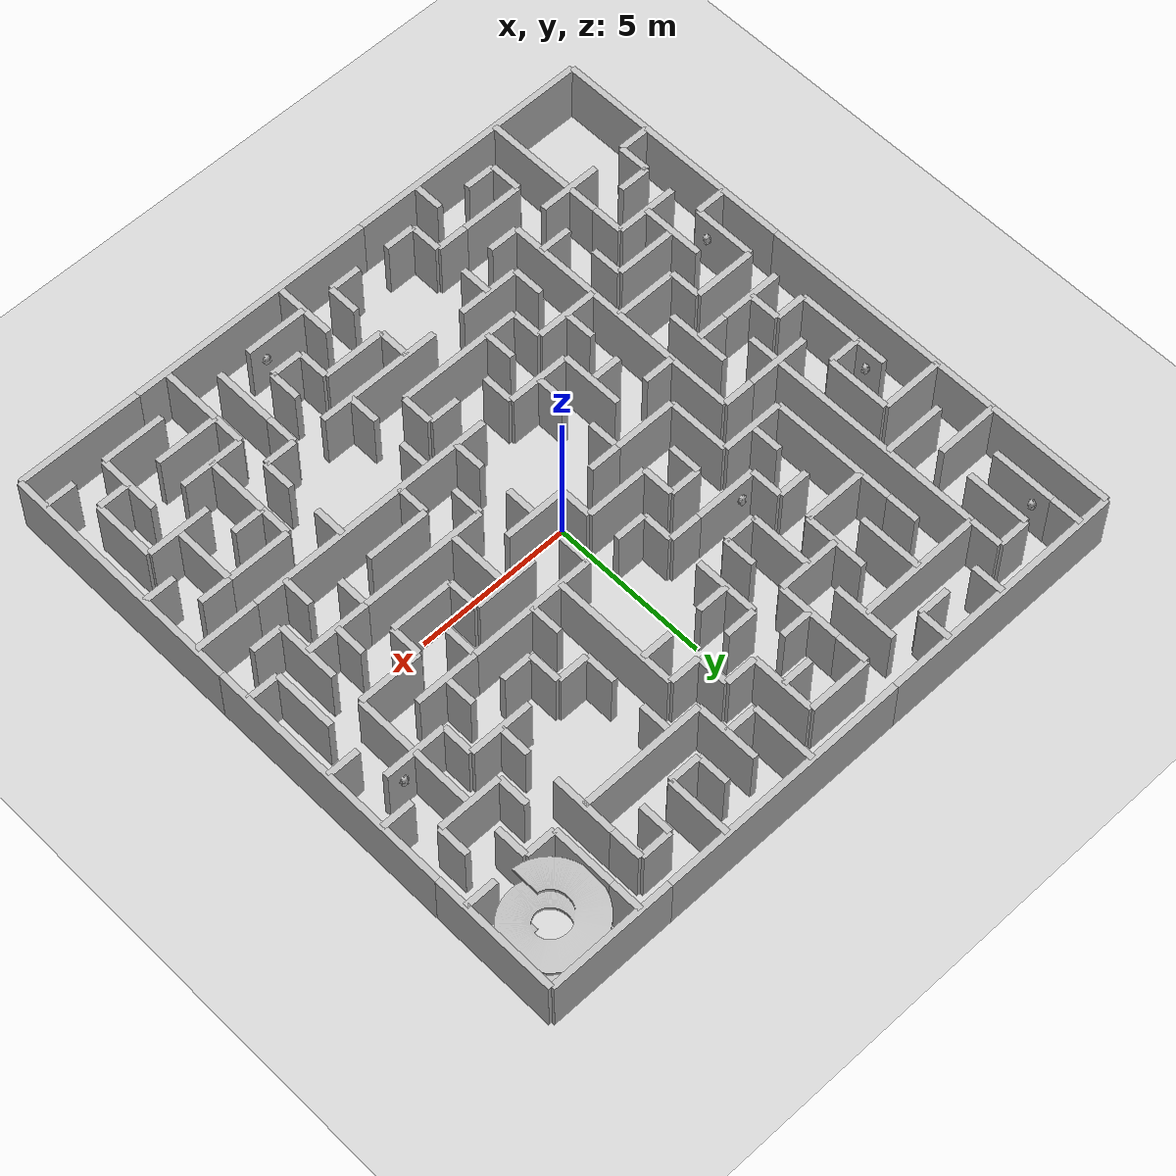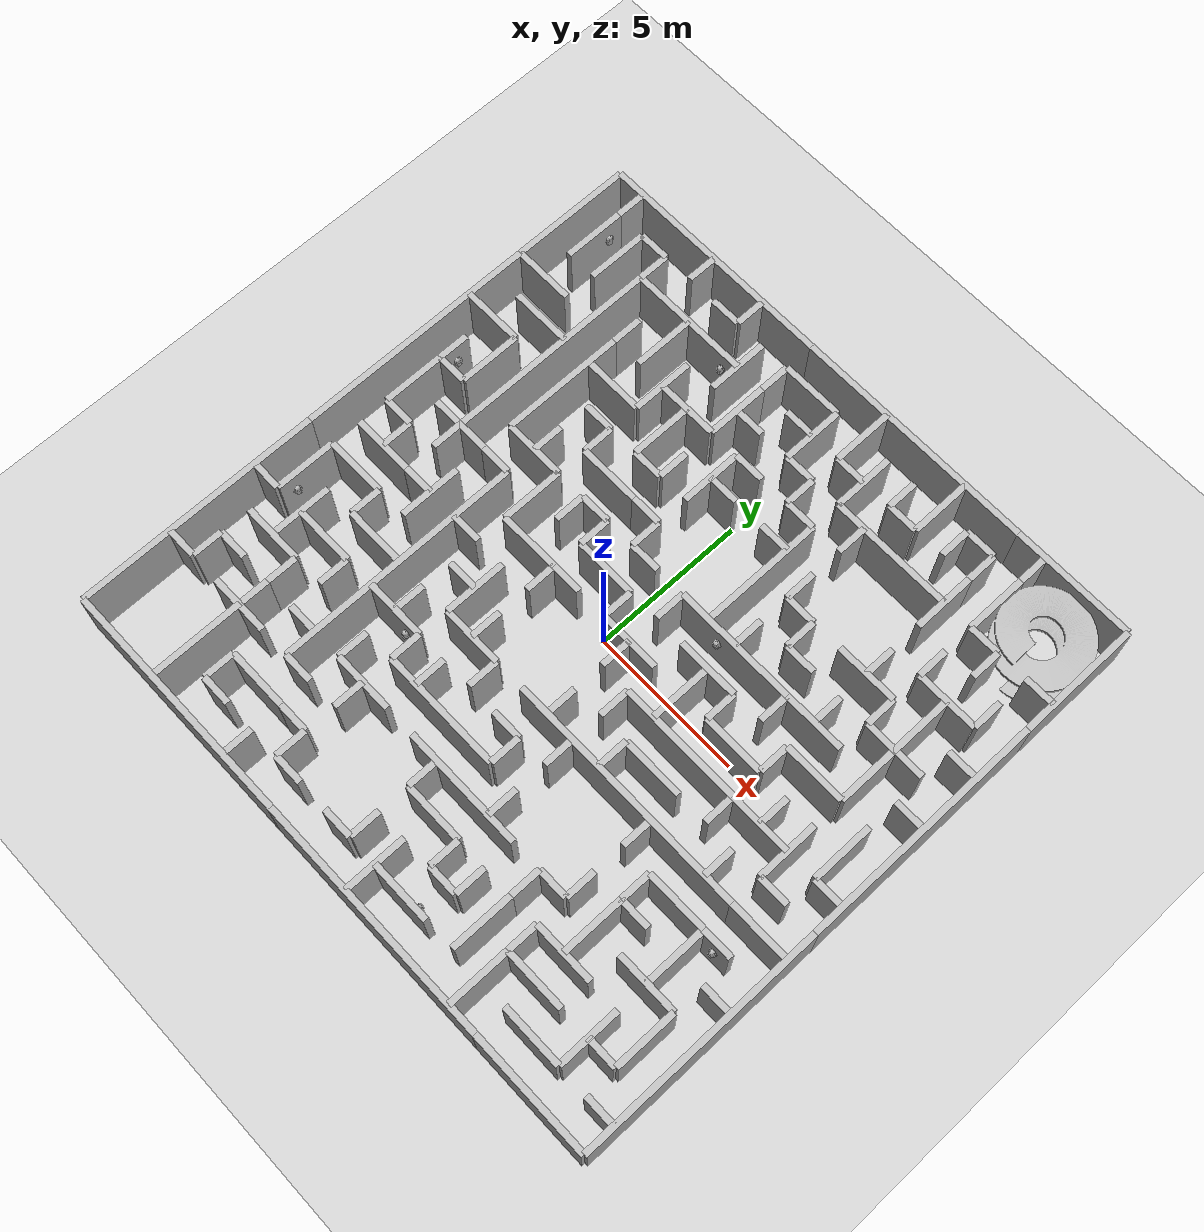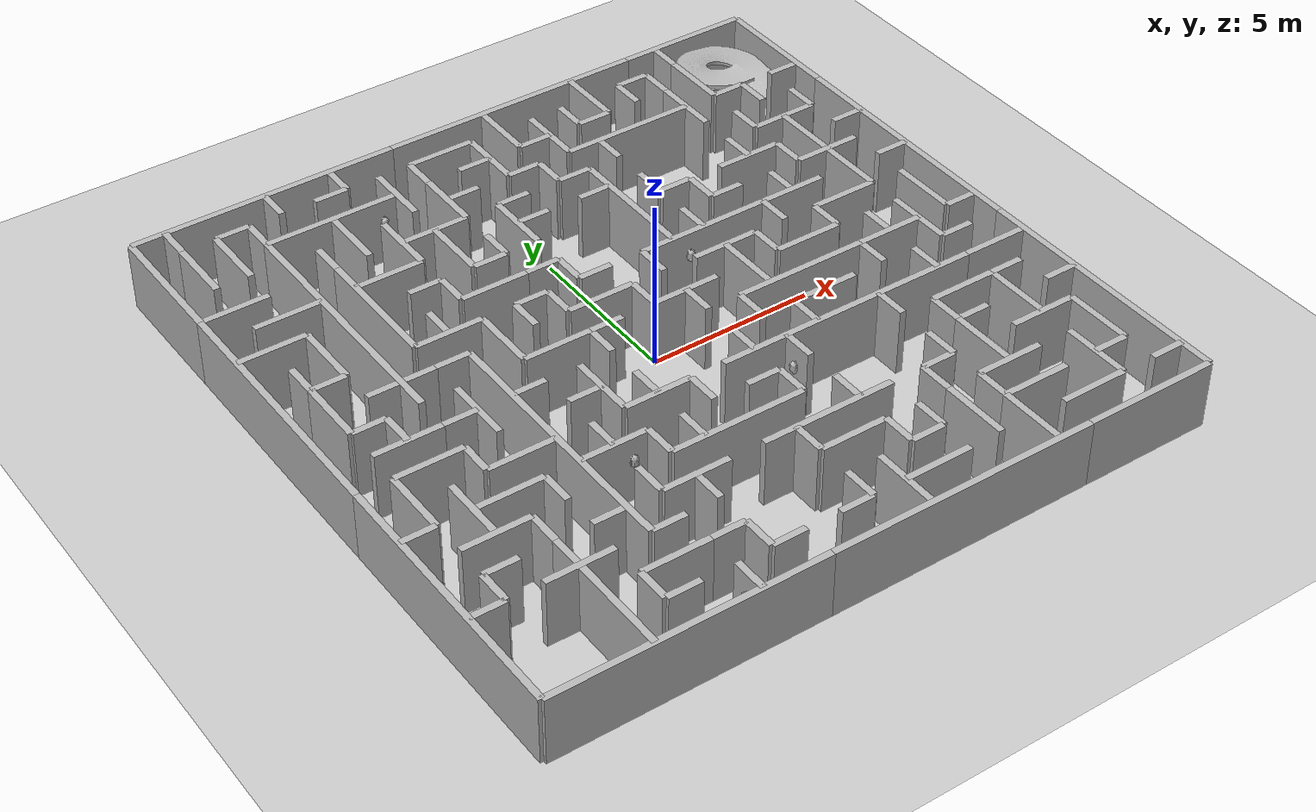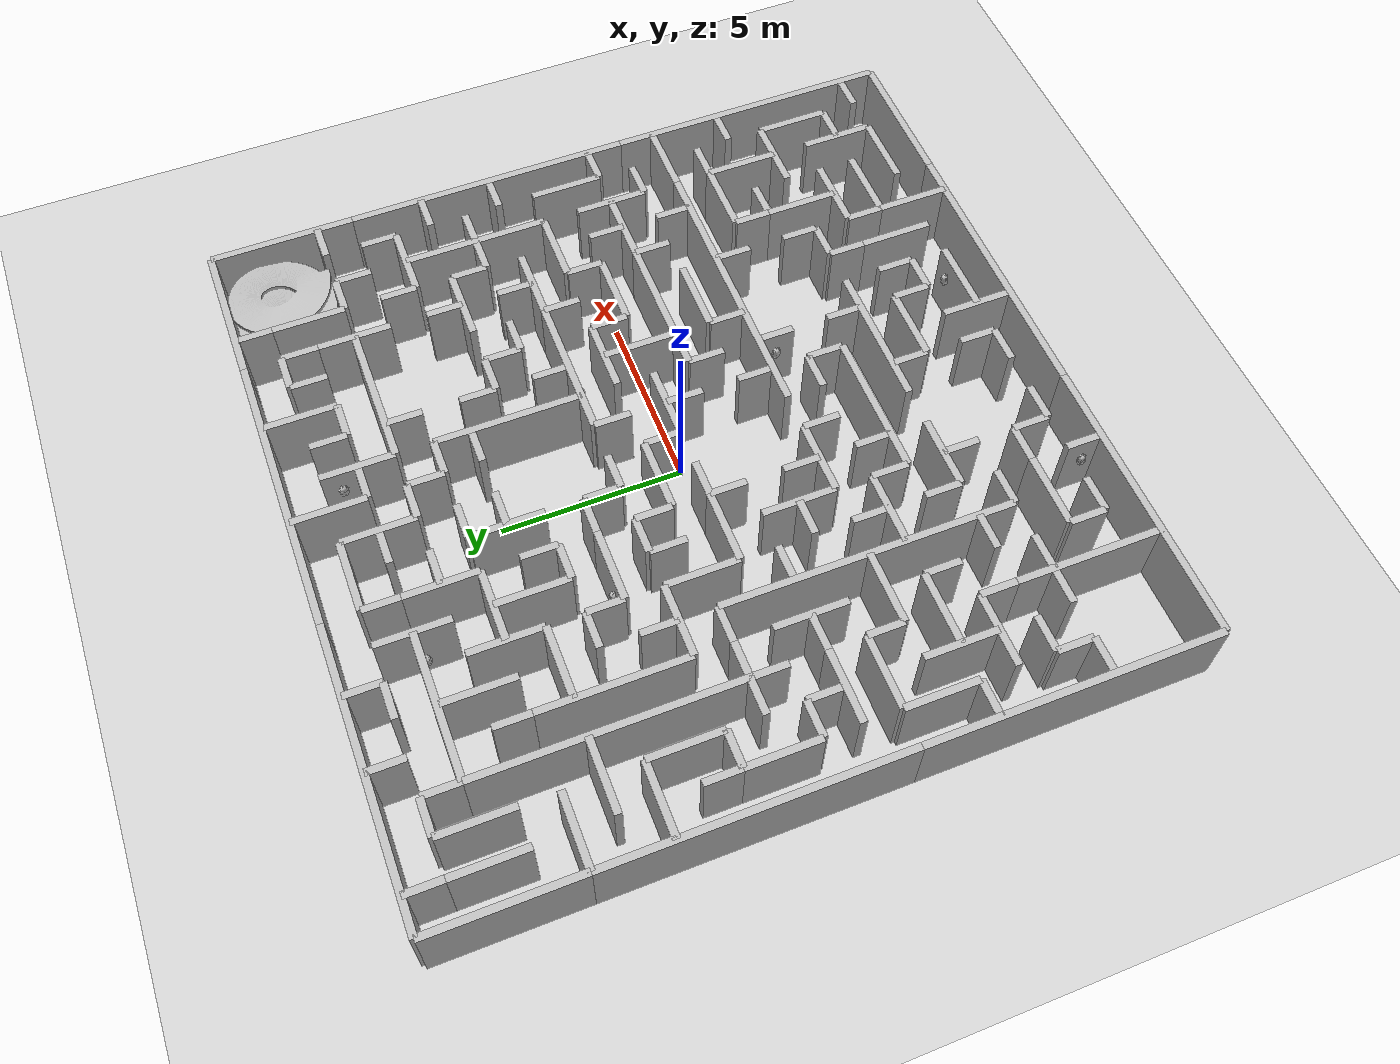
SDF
<sdf version="1.10">
 <world name="maze_world">
  <include><uri>model://ground</uri></include>
  <light type="directional" name="sun">
   <visualize>false</visualize>
   <pose>0 0 10 0 0 0</pose>
   <diffuse>0.8 0.8 0.8 1</diffuse>
   <specular>0.2 0.2 0.2 1</specular>
   <attenuation>
    <range>1000</range>
    <constant>0.9</constant>
    <linear>0.01</linear>
    <quadratic>0.001</quadratic>
   </attenuation>
   <direction>-0.5 0.5 -1</direction>
  </light>
  <include><name>ramp_0</name><uri>model://ramp</uri><pose>8.50 8.50 0.00 0 0 0</pose></include>
  <include><name>wall_8m_0_0</name><uri>model://wall_8m</uri><pose>-6.00 -10.00 0.0 0 0 0.0000</pose></include>
  <include><name>wall_8m_0_1</name><uri>model://wall_8m</uri><pose>2.00 -10.00 0.0 0 0 0.0000</pose></include>
  <include><name>wall_4m_0_2</name><uri>model://wall_4m</uri><pose>8.00 -10.00 0.0 0 0 0.0000</pose></include>
  <include><name>wall_1m_0_3</name><uri>model://wall_1m</uri><pose>-5.50 -9.00 0.0 0 0 0.0000</pose></include>
  <include><name>wall_1m_0_4</name><uri>model://wall_1m</uri><pose>-2.50 -9.00 0.0 0 0 0.0000</pose></include>
  <include><name>wall_1m_0_5</name><uri>model://wall_1m</uri><pose>-0.50 -9.00 0.0 0 0 0.0000</pose></include>
  <include><name>wall_2m_0_6</name><uri>model://wall_2m</uri><pose>2.00 -9.00 0.0 0 0 0.0000</pose></include>
  <include><name>wall_2m_0_7</name><uri>model://wall_2m</uri><pose>7.00 -9.00 0.0 0 0 0.0000</pose></include>
  <include><name>wall_1m_0_8</name><uri>model://wall_1m</uri><pose>9.50 -9.00 0.0 0 0 0.0000</pose></include>
  <include><name>wall_2m_0_9</name><uri>model://wall_2m</uri><pose>-5.00 -8.00 0.0 0 0 0.0000</pose></include>
  <include><name>wall_1m_0_10</name><uri>model://wall_1m</uri><pose>-3.50 -8.00 0.0 0 0 0.0000</pose></include>
  <include><name>wall_1m_0_11</name><uri>model://wall_1m</uri><pose>2.50 -8.00 0.0 0 0 0.0000</pose></include>
  <include><name>wall_2m_0_12</name><uri>model://wall_2m</uri><pose>6.00 -8.00 0.0 0 0 0.0000</pose></include>
  <include><name>wall_1m_0_13</name><uri>model://wall_1m</uri><pose>8.50 -8.00 0.0 0 0 0.0000</pose></include>
  <include><name>wall_1m_0_14</name><uri>model://wall_1m</uri><pose>-9.50 -7.00 0.0 0 0 0.0000</pose></include>
  <include><name>wall_2m_0_15</name><uri>model://wall_2m</uri><pose>-7.00 -7.00 0.0 0 0 0.0000</pose></include>
  <include><name>wall_1m_0_16</name><uri>model://wall_1m</uri><pose>-4.50 -7.00 0.0 0 0 0.0000</pose></include>
  <include><name>wall_2m_0_17</name><uri>model://wall_2m</uri><pose>1.00 -7.00 0.0 0 0 0.0000</pose></include>
  <include><name>wall_2m_0_18</name><uri>model://wall_2m</uri><pose>6.00 -7.00 0.0 0 0 0.0000</pose></include>
  <include><name>wall_1m_0_19</name><uri>model://wall_1m</uri><pose>-8.50 -6.00 0.0 0 0 0.0000</pose></include>
  <include><name>wall_1m_0_20</name><uri>model://wall_1m</uri><pose>-5.50 -6.00 0.0 0 0 0.0000</pose></include>
  <include><name>wall_2m_0_21</name><uri>model://wall_2m</uri><pose>-3.00 -6.00 0.0 0 0 0.0000</pose></include>
  <include><name>wall_4m_0_22</name><uri>model://wall_4m</uri><pose>1.00 -6.00 0.0 0 0 0.0000</pose></include>
  <include><name>wall_1m_0_23</name><uri>model://wall_1m</uri><pose>4.50 -6.00 0.0 0 0 0.0000</pose></include>
  <include><name>wall_2m_0_24</name><uri>model://wall_2m</uri><pose>8.00 -6.00 0.0 0 0 0.0000</pose></include>
  <include><name>wall_2m_0_25</name><uri>model://wall_2m</uri><pose>-8.00 -5.00 0.0 0 0 0.0000</pose></include>
  <include><name>wall_4m_0_26</name><uri>model://wall_4m</uri><pose>-1.00 -5.00 0.0 0 0 0.0000</pose></include>
  <include><name>wall_1m_0_27</name><uri>model://wall_1m</uri><pose>6.50 -5.00 0.0 0 0 0.0000</pose></include>
  <include><name>wall_1m_0_28</name><uri>model://wall_1m</uri><pose>9.50 -5.00 0.0 0 0 0.0000</pose></include>
  <include><name>wall_1m_0_29</name><uri>model://wall_1m</uri><pose>-9.50 -4.00 0.0 0 0 0.0000</pose></include>
  <include><name>wall_2m_0_30</name><uri>model://wall_2m</uri><pose>-7.00 -4.00 0.0 0 0 0.0000</pose></include>
  <include><name>wall_2m_0_31</name><uri>model://wall_2m</uri><pose>-4.00 -4.00 0.0 0 0 0.0000</pose></include>
  <include><name>wall_1m_0_32</name><uri>model://wall_1m</uri><pose>0.50 -4.00 0.0 0 0 0.0000</pose></include>
  <include><name>wall_2m_0_33</name><uri>model://wall_2m</uri><pose>7.00 -4.00 0.0 0 0 0.0000</pose></include>
  <include><name>wall_1m_0_34</name><uri>model://wall_1m</uri><pose>8.50 -4.00 0.0 0 0 0.0000</pose></include>
  <include><name>wall_2m_0_35</name><uri>model://wall_2m</uri><pose>-6.00 -3.00 0.0 0 0 0.0000</pose></include>
  <include><name>wall_2m_0_36</name><uri>model://wall_2m</uri><pose>-2.00 -3.00 0.0 0 0 0.0000</pose></include>
  <include><name>wall_8m_0_37</name><uri>model://wall_8m</uri><pose>4.00 -3.00 0.0 0 0 0.0000</pose></include>
  <include><name>wall_2m_0_38</name><uri>model://wall_2m</uri><pose>9.00 -3.00 0.0 0 0 0.0000</pose></include>
  <include><name>wall_2m_0_39</name><uri>model://wall_2m</uri><pose>-8.00 -2.00 0.0 0 0 0.0000</pose></include>
  <include><name>wall_1m_0_40</name><uri>model://wall_1m</uri><pose>-3.50 -2.00 0.0 0 0 0.0000</pose></include>
  <include><name>wall_2m_0_41</name><uri>model://wall_2m</uri><pose>4.00 -2.00 0.0 0 0 0.0000</pose></include>
  <include><name>wall_1m_0_42</name><uri>model://wall_1m</uri><pose>8.50 -2.00 0.0 0 0 0.0000</pose></include>
  <include><name>wall_2m_0_43</name><uri>model://wall_2m</uri><pose>-8.00 -1.00 0.0 0 0 0.0000</pose></include>
  <include><name>wall_1m_0_44</name><uri>model://wall_1m</uri><pose>-6.50 -1.00 0.0 0 0 0.0000</pose></include>
  <include><name>wall_1m_0_45</name><uri>model://wall_1m</uri><pose>-4.50 -1.00 0.0 0 0 0.0000</pose></include>
  <include><name>wall_4m_0_46</name><uri>model://wall_4m</uri><pose>4.00 -1.00 0.0 0 0 0.0000</pose></include>
  <include><name>wall_2m_0_47</name><uri>model://wall_2m</uri><pose>7.00 -1.00 0.0 0 0 0.0000</pose></include>
  <include><name>wall_1m_0_48</name><uri>model://wall_1m</uri><pose>9.50 -1.00 0.0 0 0 0.0000</pose></include>
  <include><name>wall_1m_0_49</name><uri>model://wall_1m</uri><pose>-8.50 0.00 0.0 0 0 0.0000</pose></include>
  <include><name>wall_2m_0_50</name><uri>model://wall_2m</uri><pose>-3.00 0.00 0.0 0 0 0.0000</pose></include>
  <include><name>wall_1m_0_51</name><uri>model://wall_1m</uri><pose>-1.50 0.00 0.0 0 0 0.0000</pose></include>
  <include><name>wall_2m_0_52</name><uri>model://wall_2m</uri><pose>1.00 0.00 0.0 0 0 0.0000</pose></include>
  <include><name>wall_2m_0_53</name><uri>model://wall_2m</uri><pose>5.00 0.00 0.0 0 0 0.0000</pose></include>
  <include><name>wall_2m_0_54</name><uri>model://wall_2m</uri><pose>-7.00 1.00 0.0 0 0 0.0000</pose></include>
  <include><name>wall_1m_0_55</name><uri>model://wall_1m</uri><pose>-5.50 1.00 0.0 0 0 0.0000</pose></include>
  <include><name>wall_2m_0_56</name><uri>model://wall_2m</uri><pose>-1.00 1.00 0.0 0 0 0.0000</pose></include>
  <include><name>wall_2m_0_57</name><uri>model://wall_2m</uri><pose>3.00 1.00 0.0 0 0 0.0000</pose></include>
  <include><name>wall_2m_0_58</name><uri>model://wall_2m</uri><pose>7.00 1.00 0.0 0 0 0.0000</pose></include>
  <include><name>wall_1m_0_59</name><uri>model://wall_1m</uri><pose>-8.50 2.00 0.0 0 0 0.0000</pose></include>
  <include><name>wall_2m_0_60</name><uri>model://wall_2m</uri><pose>-5.00 2.00 0.0 0 0 0.0000</pose></include>
  <include><name>wall_1m_0_61</name><uri>model://wall_1m</uri><pose>-2.50 2.00 0.0 0 0 0.0000</pose></include>
  <include><name>wall_1m_0_62</name><uri>model://wall_1m</uri><pose>-0.50 2.00 0.0 0 0 0.0000</pose></include>
  <include><name>wall_4m_0_63</name><uri>model://wall_4m</uri><pose>3.00 2.00 0.0 0 0 0.0000</pose></include>
  <include><name>wall_2m_0_64</name><uri>model://wall_2m</uri><pose>6.00 2.00 0.0 0 0 0.0000</pose></include>
  <include><name>wall_1m_0_65</name><uri>model://wall_1m</uri><pose>9.50 2.00 0.0 0 0 0.0000</pose></include>
  <include><name>wall_2m_0_66</name><uri>model://wall_2m</uri><pose>-3.00 3.00 0.0 0 0 0.0000</pose></include>
  <include><name>wall_1m_0_67</name><uri>model://wall_1m</uri><pose>-1.50 3.00 0.0 0 0 0.0000</pose></include>
  <include><name>wall_1m_0_68</name><uri>model://wall_1m</uri><pose>4.50 3.00 0.0 0 0 0.0000</pose></include>
  <include><name>wall_2m_0_69</name><uri>model://wall_2m</uri><pose>8.00 3.00 0.0 0 0 0.0000</pose></include>
  <include><name>wall_2m_0_70</name><uri>model://wall_2m</uri><pose>-9.00 4.00 0.0 0 0 0.0000</pose></include>
  <include><name>wall_1m_0_71</name><uri>model://wall_1m</uri><pose>-4.50 4.00 0.0 0 0 0.0000</pose></include>
  <include><name>wall_1m_0_72</name><uri>model://wall_1m</uri><pose>-2.50 4.00 0.0 0 0 0.0000</pose></include>
  <include><name>wall_1m_0_73</name><uri>model://wall_1m</uri><pose>3.50 4.00 0.0 0 0 0.0000</pose></include>
  <include><name>wall_2m_0_74</name><uri>model://wall_2m</uri><pose>6.00 4.00 0.0 0 0 0.0000</pose></include>
  <include><name>wall_1m_0_75</name><uri>model://wall_1m</uri><pose>9.50 4.00 0.0 0 0 0.0000</pose></include>
  <include><name>wall_2m_0_76</name><uri>model://wall_2m</uri><pose>-8.00 5.00 0.0 0 0 0.0000</pose></include>
  <include><name>wall_2m_0_77</name><uri>model://wall_2m</uri><pose>-5.00 5.00 0.0 0 0 0.0000</pose></include>
  <include><name>wall_1m_0_78</name><uri>model://wall_1m</uri><pose>-0.50 5.00 0.0 0 0 0.0000</pose></include>
  <include><name>wall_1m_0_79</name><uri>model://wall_1m</uri><pose>1.50 5.00 0.0 0 0 0.0000</pose></include>
  <include><name>wall_2m_0_80</name><uri>model://wall_2m</uri><pose>8.00 5.00 0.0 0 0 0.0000</pose></include>
  <include><name>wall_2m_0_81</name><uri>model://wall_2m</uri><pose>-9.00 6.00 0.0 0 0 0.0000</pose></include>
  <include><name>wall_2m_0_82</name><uri>model://wall_2m</uri><pose>-3.00 6.00 0.0 0 0 0.0000</pose></include>
  <include><name>wall_1m_0_83</name><uri>model://wall_1m</uri><pose>-0.50 6.00 0.0 0 0 0.0000</pose></include>
  <include><name>wall_1m_0_84</name><uri>model://wall_1m</uri><pose>1.50 6.00 0.0 0 0 0.0000</pose></include>
  <include><name>wall_1m_0_85</name><uri>model://wall_1m</uri><pose>-1.50 7.00 0.0 0 0 0.0000</pose></include>
  <include><name>wall_1m_0_86</name><uri>model://wall_1m</uri><pose>0.50 7.00 0.0 0 0 0.0000</pose></include>
  <include><name>wall_4m_0_87</name><uri>model://wall_4m</uri><pose>4.00 7.00 0.0 0 0 0.0000</pose></include>
  <include><name>wall_1m_0_88</name><uri>model://wall_1m</uri><pose>7.50 7.00 0.0 0 0 0.0000</pose></include>
  <include><name>wall_1m_0_89</name><uri>model://wall_1m</uri><pose>9.50 7.00 0.0 0 0 0.0000</pose></include>
  <include><name>wall_4m_0_90</name><uri>model://wall_4m</uri><pose>-5.00 8.00 0.0 0 0 0.0000</pose></include>
  <include><name>wall_1m_0_91</name><uri>model://wall_1m</uri><pose>-0.50 8.00 0.0 0 0 0.0000</pose></include>
  <include><name>wall_1m_0_92</name><uri>model://wall_1m</uri><pose>1.50 8.00 0.0 0 0 0.0000</pose></include>
  <include><name>wall_1m_0_93</name><uri>model://wall_1m</uri><pose>3.50 8.00 0.0 0 0 0.0000</pose></include>
  <include><name>wall_1m_0_94</name><uri>model://wall_1m</uri><pose>-7.50 9.00 0.0 0 0 0.0000</pose></include>
  <include><name>wall_1m_0_95</name><uri>model://wall_1m</uri><pose>-4.50 9.00 0.0 0 0 0.0000</pose></include>
  <include><name>wall_2m_0_96</name><uri>model://wall_2m</uri><pose>-1.00 9.00 0.0 0 0 0.0000</pose></include>
  <include><name>wall_1m_0_97</name><uri>model://wall_1m</uri><pose>5.50 9.00 0.0 0 0 0.0000</pose></include>
  <include><name>wall_8m_0_98</name><uri>model://wall_8m</uri><pose>-10.00 -6.00 0.0 0 0 1.5708</pose></include>
  <include><name>wall_8m_0_99</name><uri>model://wall_8m</uri><pose>-10.00 2.00 0.0 0 0 1.5708</pose></include>
  <include><name>wall_4m_0_100</name><uri>model://wall_4m</uri><pose>-10.00 8.00 0.0 0 0 1.5708</pose></include>
  <include><name>wall_1m_0_101</name><uri>model://wall_1m</uri><pose>-9.00 -6.50 0.0 0 0 1.5708</pose></include>
  <include><name>wall_2m_0_102</name><uri>model://wall_2m</uri><pose>-9.00 -3.00 0.0 0 0 1.5708</pose></include>
  <include><name>wall_2m_0_103</name><uri>model://wall_2m</uri><pose>-9.00 1.00 0.0 0 0 1.5708</pose></include>
  <include><name>wall_1m_0_104</name><uri>model://wall_1m</uri><pose>-9.00 2.50 0.0 0 0 1.5708</pose></include>
  <include><name>wall_2m_0_105</name><uri>model://wall_2m</uri><pose>-9.00 8.00 0.0 0 0 1.5708</pose></include>
  <include><name>wall_1m_0_106</name><uri>model://wall_1m</uri><pose>-9.00 9.50 0.0 0 0 1.5708</pose></include>
  <include><name>wall_2m_0_107</name><uri>model://wall_2m</uri><pose>-8.00 -4.00 0.0 0 0 1.5708</pose></include>
  <include><name>wall_1m_0_108</name><uri>model://wall_1m</uri><pose>-8.00 -0.50 0.0 0 0 1.5708</pose></include>
  <include><name>wall_2m_0_109</name><uri>model://wall_2m</uri><pose>-8.00 3.00 0.0 0 0 1.5708</pose></include>
  <include><name>wall_2m_0_110</name><uri>model://wall_2m</uri><pose>-8.00 8.00 0.0 0 0 1.5708</pose></include>
  <include><name>wall_4m_0_111</name><uri>model://wall_4m</uri><pose>-7.00 -8.00 0.0 0 0 1.5708</pose></include>
  <include><name>wall_1m_0_112</name><uri>model://wall_1m</uri><pose>-7.00 -5.50 0.0 0 0 1.5708</pose></include>
  <include><name>wall_1m_0_113</name><uri>model://wall_1m</uri><pose>-7.00 -2.50 0.0 0 0 1.5708</pose></include>
  <include><name>wall_8m_0_114</name><uri>model://wall_8m</uri><pose>-7.00 4.00 0.0 0 0 1.5708</pose></include>
  <include><name>wall_1m_0_115</name><uri>model://wall_1m</uri><pose>-7.00 8.50 0.0 0 0 1.5708</pose></include>
  <include><name>wall_1m_0_116</name><uri>model://wall_1m</uri><pose>-6.00 -8.50 0.0 0 0 1.5708</pose></include>
  <include><name>wall_1m_0_117</name><uri>model://wall_1m</uri><pose>-6.00 -4.50 0.0 0 0 1.5708</pose></include>
  <include><name>wall_2m_0_118</name><uri>model://wall_2m</uri><pose>-6.00 -1.00 0.0 0 0 1.5708</pose></include>
  <include><name>wall_4m_0_119</name><uri>model://wall_4m</uri><pose>-6.00 4.00 0.0 0 0 1.5708</pose></include>
  <include><name>wall_1m_0_120</name><uri>model://wall_1m</uri><pose>-6.00 6.50 0.0 0 0 1.5708</pose></include>
  <include><name>wall_1m_0_121</name><uri>model://wall_1m</uri><pose>-6.00 9.50 0.0 0 0 1.5708</pose></include>
  <include><name>wall_8m_0_122</name><uri>model://wall_8m</uri><pose>-5.00 -3.00 0.0 0 0 1.5708</pose></include>
  <include><name>wall_1m_0_123</name><uri>model://wall_1m</uri><pose>-5.00 2.50 0.0 0 0 1.5708</pose></include>
  <include><name>wall_2m_0_124</name><uri>model://wall_2m</uri><pose>-5.00 7.00 0.0 0 0 1.5708</pose></include>
  <include><name>wall_1m_0_125</name><uri>model://wall_1m</uri><pose>-4.00 -9.50 0.0 0 0 1.5708</pose></include>
  <include><name>wall_1m_0_126</name><uri>model://wall_1m</uri><pose>-4.00 -5.50 0.0 0 0 1.5708</pose></include>
  <include><name>wall_1m_0_127</name><uri>model://wall_1m</uri><pose>-4.00 -3.50 0.0 0 0 1.5708</pose></include>
  <include><name>wall_2m_0_128</name><uri>model://wall_2m</uri><pose>-4.00 1.00 0.0 0 0 1.5708</pose></include>
  <include><name>wall_1m_0_129</name><uri>model://wall_1m</uri><pose>-4.00 3.50 0.0 0 0 1.5708</pose></include>
  <include><name>wall_2m_0_130</name><uri>model://wall_2m</uri><pose>-4.00 6.00 0.0 0 0 1.5708</pose></include>
  <include><name>wall_1m_0_131</name><uri>model://wall_1m</uri><pose>-4.00 9.50 0.0 0 0 1.5708</pose></include>
  <include><name>wall_1m_0_132</name><uri>model://wall_1m</uri><pose>-3.00 -8.50 0.0 0 0 1.5708</pose></include>
  <include><name>wall_1m_0_133</name><uri>model://wall_1m</uri><pose>-3.00 -6.50 0.0 0 0 1.5708</pose></include>
  <include><name>wall_1m_0_134</name><uri>model://wall_1m</uri><pose>-3.00 -4.50 0.0 0 0 1.5708</pose></include>
  <include><name>wall_2m_0_135</name><uri>model://wall_2m</uri><pose>-3.00 -2.00 0.0 0 0 1.5708</pose></include>
  <include><name>wall_1m_0_136</name><uri>model://wall_1m</uri><pose>-3.00 1.50 0.0 0 0 1.5708</pose></include>
  <include><name>wall_2m_0_137</name><uri>model://wall_2m</uri><pose>-3.00 5.00 0.0 0 0 1.5708</pose></include>
  <include><name>wall_2m_0_138</name><uri>model://wall_2m</uri><pose>-3.00 8.00 0.0 0 0 1.5708</pose></include>
  <include><name>wall_1m_0_139</name><uri>model://wall_1m</uri><pose>-2.00 -4.50 0.0 0 0 1.5708</pose></include>
  <include><name>wall_1m_0_140</name><uri>model://wall_1m</uri><pose>-2.00 -2.50 0.0 0 0 1.5708</pose></include>
  <include><name>wall_1m_0_141</name><uri>model://wall_1m</uri><pose>-2.00 -0.50 0.0 0 0 1.5708</pose></include>
  <include><name>wall_1m_0_142</name><uri>model://wall_1m</uri><pose>-2.00 1.50 0.0 0 0 1.5708</pose></include>
  <include><name>wall_1m_0_143</name><uri>model://wall_1m</uri><pose>-2.00 4.50 0.0 0 0 1.5708</pose></include>
  <include><name>wall_2m_0_144</name><uri>model://wall_2m</uri><pose>-2.00 7.00 0.0 0 0 1.5708</pose></include>
  <include><name>wall_1m_0_145</name><uri>model://wall_1m</uri><pose>-2.00 8.50 0.0 0 0 1.5708</pose></include>
  <include><name>wall_1m_0_146</name><uri>model://wall_1m</uri><pose>-1.00 -3.50 0.0 0 0 1.5708</pose></include>
  <include><name>wall_1m_0_147</name><uri>model://wall_1m</uri><pose>-1.00 2.50 0.0 0 0 1.5708</pose></include>
  <include><name>wall_2m_0_148</name><uri>model://wall_2m</uri><pose>-1.00 5.00 0.0 0 0 1.5708</pose></include>
  <include><name>wall_1m_0_149</name><uri>model://wall_1m</uri><pose>0.00 -8.50 0.0 0 0 1.5708</pose></include>
  <include><name>wall_1m_0_150</name><uri>model://wall_1m</uri><pose>0.00 -6.50 0.0 0 0 1.5708</pose></include>
  <include><name>wall_1m_0_151</name><uri>model://wall_1m</uri><pose>0.00 0.50 0.0 0 0 1.5708</pose></include>
  <include><name>wall_2m_0_152</name><uri>model://wall_2m</uri><pose>0.00 8.00 0.0 0 0 1.5708</pose></include>
  <include><name>wall_2m_0_153</name><uri>model://wall_2m</uri><pose>1.00 -9.00 0.0 0 0 1.5708</pose></include>
  <include><name>wall_1m_0_154</name><uri>model://wall_1m</uri><pose>1.00 -4.50 0.0 0 0 1.5708</pose></include>
  <include><name>wall_1m_0_155</name><uri>model://wall_1m</uri><pose>1.00 -2.50 0.0 0 0 1.5708</pose></include>
  <include><name>wall_1m_0_156</name><uri>model://wall_1m</uri><pose>1.00 -0.50 0.0 0 0 1.5708</pose></include>
  <include><name>wall_1m_0_157</name><uri>model://wall_1m</uri><pose>1.00 1.50 0.0 0 0 1.5708</pose></include>
  <include><name>wall_1m_0_158</name><uri>model://wall_1m</uri><pose>1.00 6.50 0.0 0 0 1.5708</pose></include>
  <include><name>wall_2m_0_159</name><uri>model://wall_2m</uri><pose>1.00 9.00 0.0 0 0 1.5708</pose></include>
  <include><name>wall_1m_0_160</name><uri>model://wall_1m</uri><pose>2.00 -7.50 0.0 0 0 1.5708</pose></include>
  <include><name>wall_1m_0_161</name><uri>model://wall_1m</uri><pose>2.00 -5.50 0.0 0 0 1.5708</pose></include>
  <include><name>wall_1m_0_162</name><uri>model://wall_1m</uri><pose>2.00 -3.50 0.0 0 0 1.5708</pose></include>
  <include><name>wall_1m_0_163</name><uri>model://wall_1m</uri><pose>2.00 -1.50 0.0 0 0 1.5708</pose></include>
  <include><name>wall_4m_0_164</name><uri>model://wall_4m</uri><pose>2.00 4.00 0.0 0 0 1.5708</pose></include>
  <include><name>wall_2m_0_165</name><uri>model://wall_2m</uri><pose>2.00 8.00 0.0 0 0 1.5708</pose></include>
  <include><name>wall_1m_0_166</name><uri>model://wall_1m</uri><pose>3.00 -7.50 0.0 0 0 1.5708</pose></include>
  <include><name>wall_1m_0_167</name><uri>model://wall_1m</uri><pose>3.00 -2.50 0.0 0 0 1.5708</pose></include>
  <include><name>wall_2m_0_168</name><uri>model://wall_2m</uri><pose>3.00 0.00 0.0 0 0 1.5708</pose></include>
  <include><name>wall_1m_0_169</name><uri>model://wall_1m</uri><pose>3.00 2.50 0.0 0 0 1.5708</pose></include>
  <include><name>wall_1m_0_170</name><uri>model://wall_1m</uri><pose>3.00 4.50 0.0 0 0 1.5708</pose></include>
  <include><name>wall_1m_0_171</name><uri>model://wall_1m</uri><pose>3.00 6.50 0.0 0 0 1.5708</pose></include>
  <include><name>wall_1m_0_172</name><uri>model://wall_1m</uri><pose>3.00 8.50 0.0 0 0 1.5708</pose></include>
  <include><name>wall_2m_0_173</name><uri>model://wall_2m</uri><pose>4.00 -8.00 0.0 0 0 1.5708</pose></include>
  <include><name>wall_1m_0_174</name><uri>model://wall_1m</uri><pose>4.00 -6.50 0.0 0 0 1.5708</pose></include>
  <include><name>wall_1m_0_175</name><uri>model://wall_1m</uri><pose>4.00 0.50 0.0 0 0 1.5708</pose></include>
  <include><name>wall_1m_0_176</name><uri>model://wall_1m</uri><pose>4.00 3.50 0.0 0 0 1.5708</pose></include>
  <include><name>wall_2m_0_177</name><uri>model://wall_2m</uri><pose>4.00 9.00 0.0 0 0 1.5708</pose></include>
  <include><name>wall_2m_0_178</name><uri>model://wall_2m</uri><pose>5.00 -9.00 0.0 0 0 1.5708</pose></include>
  <include><name>wall_1m_0_179</name><uri>model://wall_1m</uri><pose>5.00 -7.50 0.0 0 0 1.5708</pose></include>
  <include><name>wall_1m_0_180</name><uri>model://wall_1m</uri><pose>5.00 -5.50 0.0 0 0 1.5708</pose></include>
  <include><name>wall_1m_0_181</name><uri>model://wall_1m</uri><pose>5.00 -3.50 0.0 0 0 1.5708</pose></include>
  <include><name>wall_1m_0_182</name><uri>model://wall_1m</uri><pose>5.00 1.50 0.0 0 0 1.5708</pose></include>
  <include><name>wall_1m_0_183</name><uri>model://wall_1m</uri><pose>5.00 8.50 0.0 0 0 1.5708</pose></include>
  <include><name>wall_2m_0_184</name><uri>model://wall_2m</uri><pose>6.00 -6.00 0.0 0 0 1.5708</pose></include>
  <include><name>wall_1m_0_185</name><uri>model://wall_1m</uri><pose>6.00 -4.50 0.0 0 0 1.5708</pose></include>
  <include><name>wall_1m_0_186</name><uri>model://wall_1m</uri><pose>6.00 -1.50 0.0 0 0 1.5708</pose></include>
  <include><name>wall_1m_0_187</name><uri>model://wall_1m</uri><pose>6.00 0.50 0.0 0 0 1.5708</pose></include>
  <include><name>wall_1m_0_188</name><uri>model://wall_1m</uri><pose>6.00 2.50 0.0 0 0 1.5708</pose></include>
  <include><name>wall_1m_0_189</name><uri>model://wall_1m</uri><pose>6.00 4.50 0.0 0 0 1.5708</pose></include>
  <include><name>wall_2m_0_190</name><uri>model://wall_2m</uri><pose>6.00 7.00 0.0 0 0 1.5708</pose></include>
  <include><name>wall_1m_0_191</name><uri>model://wall_1m</uri><pose>6.00 8.50 0.0 0 0 1.5708</pose></include>
  <include><name>wall_1m_0_192</name><uri>model://wall_1m</uri><pose>7.00 -2.50 0.0 0 0 1.5708</pose></include>
  <include><name>wall_1m_0_193</name><uri>model://wall_1m</uri><pose>7.00 -0.50 0.0 0 0 1.5708</pose></include>
  <include><name>wall_1m_0_194</name><uri>model://wall_1m</uri><pose>7.00 3.50 0.0 0 0 1.5708</pose></include>
  <include><name>wall_1m_0_195</name><uri>model://wall_1m</uri><pose>7.00 5.50 0.0 0 0 1.5708</pose></include>
  <include><name>wall_2m_0_196</name><uri>model://wall_2m</uri><pose>7.00 8.00 0.0 0 0 1.5708</pose></include>
  <include><name>wall_1m_0_197</name><uri>model://wall_1m</uri><pose>7.00 9.50 0.0 0 0 1.5708</pose></include>
  <include><name>wall_2m_0_198</name><uri>model://wall_2m</uri><pose>8.00 -8.00 0.0 0 0 1.5708</pose></include>
  <include><name>wall_2m_0_199</name><uri>model://wall_2m</uri><pose>8.00 -5.00 0.0 0 0 1.5708</pose></include>
  <include><name>wall_2m_0_200</name><uri>model://wall_2m</uri><pose>8.00 -1.00 0.0 0 0 1.5708</pose></include>
  <include><name>wall_4m_0_201</name><uri>model://wall_4m</uri><pose>8.00 3.00 0.0 0 0 1.5708</pose></include>
  <include><name>wall_1m_0_202</name><uri>model://wall_1m</uri><pose>8.00 6.50 0.0 0 0 1.5708</pose></include>
  <include><name>wall_2m_0_203</name><uri>model://wall_2m</uri><pose>9.00 -7.00 0.0 0 0 1.5708</pose></include>
  <include><name>wall_2m_0_204</name><uri>model://wall_2m</uri><pose>9.00 0.00 0.0 0 0 1.5708</pose></include>
  <include><name>wall_1m_0_205</name><uri>model://wall_1m</uri><pose>9.00 5.50 0.0 0 0 1.5708</pose></include>
  <include><name>wall_8m_0_206</name><uri>model://wall_8m</uri><pose>-6.00 10.00 0.0 0 0 0.0000</pose></include>
  <include><name>wall_8m_0_207</name><uri>model://wall_8m</uri><pose>2.00 10.00 0.0 0 0 0.0000</pose></include>
  <include><name>wall_4m_0_208</name><uri>model://wall_4m</uri><pose>8.00 10.00 0.0 0 0 0.0000</pose></include>
  <include><name>wall_8m_0_209</name><uri>model://wall_8m</uri><pose>10.00 -6.00 0.0 0 0 1.5708</pose></include>
  <include><name>wall_8m_0_210</name><uri>model://wall_8m</uri><pose>10.00 2.00 0.0 0 0 1.5708</pose></include>
  <include><name>wall_4m_0_211</name><uri>model://wall_4m</uri><pose>10.00 8.00 0.0 0 0 1.5708</pose></include>
  <include>
   <name>wall_lamp_0_6_0_left</name>
   <uri>model://wall_lamp</uri>
   <pose>-4.10 -9.50 1.30 0 0 -1.5708</pose>
  </include>
  <include>
   <name>wall_lamp_0_12_0_bottom</name>
   <uri>model://wall_lamp</uri>
   <pose>2.50 -8.90 1.30 0 0 3.1416</pose>
  </include>
  <include>
   <name>wall_lamp_0_0_6_right</name>
   <uri>model://wall_lamp</uri>
   <pose>-8.90 -3.50 1.30 0 0 1.5708</pose>
  </include>
  <include>
   <name>wall_lamp_0_6_6_top</name>
   <uri>model://wall_lamp</uri>
   <pose>-3.50 -4.10 1.30 0 0 0.0000</pose>
  </include>
  <include>
   <name>wall_lamp_0_12_6_left</name>
   <uri>model://wall_lamp</uri>
   <pose>1.90 -3.50 1.30 0 0 -1.5708</pose>
  </include>
  <include>
   <name>wall_lamp_0_18_6_top</name>
   <uri>model://wall_lamp</uri>
   <pose>8.50 -4.10 1.30 0 0 0.0000</pose>
  </include>
  <include>
   <name>wall_lamp_0_0_12_right</name>
   <uri>model://wall_lamp</uri>
   <pose>-8.90 2.50 1.30 0 0 1.5708</pose>
  </include>
  <include>
   <name>wall_lamp_0_6_12_bottom</name>
   <uri>model://wall_lamp</uri>
   <pose>-3.50 3.10 1.30 0 0 3.1416</pose>
  </include>
  <include>
   <name>wall_lamp_0_12_12_top</name>
   <uri>model://wall_lamp</uri>
   <pose>2.50 1.90 1.30 0 0 0.0000</pose>
  </include>
  <include>
   <name>wall_lamp_0_18_12_bottom</name>
   <uri>model://wall_lamp</uri>
   <pose>8.50 3.10 1.30 0 0 3.1416</pose>
  </include>
  <include>
   <name>wall_lamp_0_0_18_right</name>
   <uri>model://wall_lamp</uri>
   <pose>-8.90 8.50 1.30 0 0 1.5708</pose>
  </include>
  <include>
   <name>wall_lamp_0_6_18_top</name>
   <uri>model://wall_lamp</uri>
   <pose>-3.50 7.90 1.30 0 0 0.0000</pose>
  </include>
  <include>
   <name>wall_lamp_0_12_18_left</name>
   <uri>model://wall_lamp</uri>
   <pose>1.90 8.50 1.30 0 0 -1.5708</pose>
  </include>
 </world>
</sdf>

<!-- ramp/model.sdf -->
<sdf version="1.10">
  <model name="ramp">
    <static>true</static>
    <link name="ramp_link">
      <visual name="ramp_visual">
        <geometry>
          <mesh>
            <uri>model://ramp/meshes/ramp.dae</uri>
          </mesh>
        </geometry>
      </visual>

      <collision name="ramp_collision">
        <geometry>
          <mesh>
            <uri>model://ramp/meshes/ramp.dae</uri>
          </mesh>
        </geometry>
      </collision>
    </link>
  </model>
</sdf>

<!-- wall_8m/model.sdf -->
<sdf version="1.10">
  <model name="wall_8m">
    <static>true</static>
    <link name="wall_link">
      <visual name="wall_visual">
        <geometry>
          <mesh>
            <uri>model://wall_8m/meshes/wall_8m.dae</uri>
          </mesh>
        </geometry>
      </visual>

      <collision name="wall_collision">
        <pose>0 0 1 0 0 0</pose>
        <geometry>
          <box>
            <size>8 0.2 2</size>
          </box>
        </geometry>
      </collision>
    </link>
  </model>
</sdf>

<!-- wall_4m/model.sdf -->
<sdf version="1.10">
  <model name="wall_4m">
    <static>true</static>
    <link name="wall_link">
      <visual name="wall_visual">
        <geometry>
          <mesh>
            <uri>model://wall_4m/meshes/wall_4m.dae</uri>
          </mesh>
        </geometry>
      </visual>

      <collision name="wall_collision">
        <pose>0 0 1 0 0 0</pose>
        <geometry>
          <box>
            <size>4 0.2 2</size>
          </box>
        </geometry>
      </collision>
    </link>
  </model>
</sdf>

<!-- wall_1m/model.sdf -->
<sdf version="1.10">
  <model name="wall_1m">
    <static>true</static>
    <link name="wall_link">
      <visual name="wall_visual">
        <geometry>
          <mesh>
            <uri>model://wall_1m/meshes/wall_1m.dae</uri>
          </mesh>
        </geometry>
      </visual>

      <collision name="wall_collision">
        <pose>0 0 1 0 0 0</pose>
        <geometry>
          <box>
            <size>1 0.2 2</size>
          </box>
        </geometry>
      </collision>
    </link>
  </model>
</sdf>

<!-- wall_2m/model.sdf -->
<sdf version="1.10">
  <model name="wall_2m">
    <static>true</static>
    <link name="wall_link">
      <visual name="wall_visual">
        <geometry>
          <mesh>
            <uri>model://wall_2m/meshes/wall_2m.dae</uri>
          </mesh>
        </geometry>
      </visual>

      <collision name="wall_collision">
        <pose>0 0 1 0 0 0</pose>
        <geometry>
          <box>
            <size>2 0.2 2</size>
          </box>
        </geometry>
      </collision>
    </link>
  </model>
</sdf>

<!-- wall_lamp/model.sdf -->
<sdf version="1.10">
  <model name="wall_lamp">
    <static>true</static>
    <link name="lamp_link">
      <visual name="lamp_visual">
        <geometry>
          <mesh>
            <uri>model://wall_lamp/meshes/wall_lamp.dae</uri>
          </mesh>
        </geometry>
        <cast_shadows>false</cast_shadows>
      </visual>
      <light type="point" name="lamp_light">
        <pose>0 -0.2 0 0 0 0</pose>
        <diffuse>1 0.8 0.5 1</diffuse>
        <specular>0.9 0.9 0.9 1</specular>
        <attenuation>
            <range>3</range>
            <constant>0.5</constant>
            <linear>0.1</linear>
            <quadratic>0.01</quadratic>
        </attenuation>
        <cast_shadows>true</cast_shadows>
        <visualize>false</visualize>
    </light>
    </link>
  </model>
</sdf>
